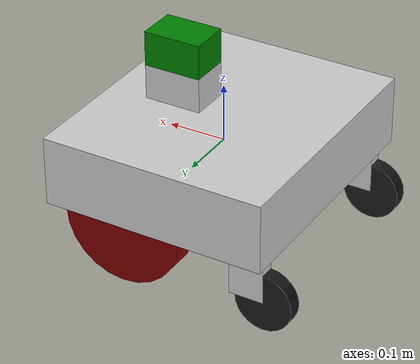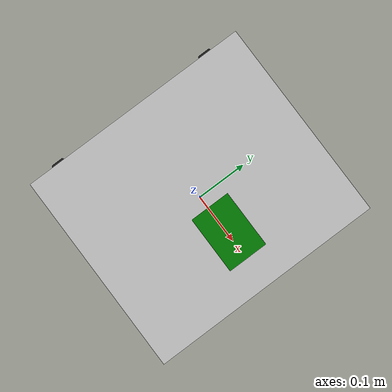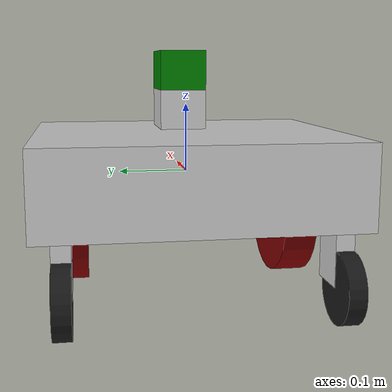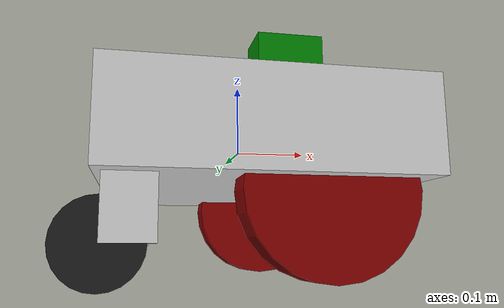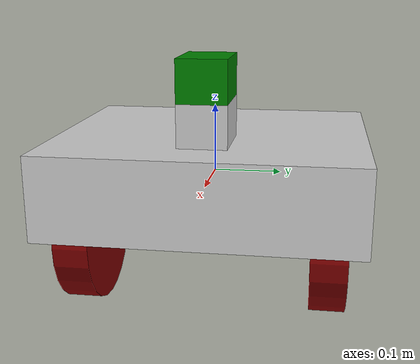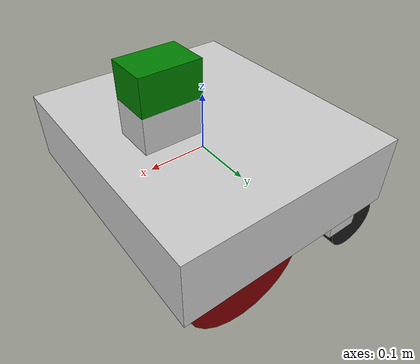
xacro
<?xml version="1.0" encoding="UTF-8"?>
<robot xmlns:xacro="http://ros.org/wiki/xacro"  name="robot-p">
  <link name="base_link">
    <inertial>
      <origin rpy="0 0 0" xyz="0.0 0.0 0.0"/>
      <mass value="0.56"/>
      <inertia ixx="0.004878" ixy="-6.2341e-07" ixz="-7.4538e-07" iyy="0.00090164" iyz="-0.00014394" izz="0.0042946"/>
    </inertial>
    <visual>
      <geometry>
        <box size="0.39 0.45 0.12"/>
      </geometry>
      <material name="grey">
        <color rgba="0.8 .8 .8 .9"/>
      </material>
    </visual>
  </link>
  <collision>
  	<geometry>
  		<box size="0.39 0.45 0.12"/>
  	</geometry>
  </collision>
  <xacro:include filename="$(find robot_p)/model/robot-p_rear_wheel.urdf.xacro" />
  <xacro:include filename="$(find robot_p)/model/robot-p.gazebo" />
  <xacro:include filename="$(find robot_p)/model/robot-p_front_wheel.urdf.xacro" />
  <xacro:include filename="$(find robot_p)/model/robot-p_laser_scanner.urdf.xacro" />
</robot>

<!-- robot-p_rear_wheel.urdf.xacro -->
<robot xmlns:xacro="http://ros.org/wiki/xacro">
  <link name="rear_left_swivel">
    <inertial>
      <origin rpy="0 0 0" xyz="0.0 0.0 0.0"/>
      <mass value="0.56"/>
      <inertia ixx="0.004878" ixy="-6.2341e-07" ixz="-7.4538e-07" iyy="0.00090164" iyz="-0.00014394" izz="0.0042946"/>
    </inertial>
    <visual>
      <origin xyz="0 0 0" rpy="0 0 0"/>
      <geometry>
        <box size="0.06 0.026 0.075"/>
      </geometry>
      <material name="gray">
        <color rgba="0.8 0.8 0.8 1"/>
      </material>
    </visual>
    <collision>
      <geometry>
        <box size="0.06 0.026 0.075"/>
      </geometry>
    </collision>
  </link>
  <joint name="base_rear_left_swivel_joint" type="continuous">
    <origin xyz="-0.155 0.185 -0.0975" rpy="0 0 0"/>
    <axis xyz="0 0 1" />
    <anchor xyz="0 1 0"/>
    <limit effort="100" velocity="100" k_velocity="0" />
    <joint_properties damping="0.0" friction="0.0" />
    <parent link="base_link"/>
    <child link="rear_left_swivel"/>
  </joint>
  <link name="rear_left_center_wheel">
    <inertial>
      <origin rpy="0 0 0" xyz="0.0 0.0 0.0"/>
      <mass value="0.56"/>
      <inertia ixx="0.004878" ixy="-6.2341e-07" ixz="-7.4538e-07" iyy="0.00090164" iyz="-0.00014394" izz="0.0042946"/>
    </inertial>
    <visual>
      <origin xyz="0 0 0" rpy="${-3.1415927/2.0} 0 0"/>
      <geometry>
        <cylinder length="0.025" radius="0.05"/>
      </geometry>
      <material name="black">
        <color rgba="0.1 0.1 0.1 1"/>
      </material>
    </visual>
    <collision>
      <origin xyz="0 0 0" rpy="${-3.1415927/2.0} 0 0"/>
      <geometry>
        <cylinder length="0.025" radius="0.05"/>
      </geometry>
    </collision>
  </link>
  <joint name="rear_left_swivel_wheel_joint" type="continuous">
    <origin xyz="-0.03 0 -0.0375" rpy="0 0 0"/>
    <axis xyz="0 1 0"/>
    <anchor xyz="0 0 0"/>
    <limit effort="100" velocity="100" k_velocity="0" />
    <joint_properties damping="0.0" friction="0.0" />
    <parent link="rear_left_swivel"/>
    <child link="rear_left_center_wheel"/>
  </joint>
  <link name="rear_right_swivel">
    <inertial>
      <origin rpy="0 0 0" xyz="0.0 0.0 0.0"/>
      <mass value="0.56"/>
      <inertia ixx="0.004878" ixy="-6.2341e-07" ixz="-7.4538e-07" iyy="0.00090164" iyz="-0.00014394" izz="0.0042946"/>
    </inertial>
    <visual>
      <origin xyz="0 0 0" rpy="0 0 0"/>
      <geometry>
        <box size="0.06 0.026 0.075"/>
      </geometry>
      <material name="gray">
        <color rgba="0.8 0.8 0.8 1"/>
      </material>
    </visual>
    <collision>
      <geometry>
        <box size="0.06 0.026 0.075"/>
      </geometry>
    </collision>
  </link>
  <joint name="base_rear_right_swivel_joint" type="continuous">
    <origin xyz="-0.155 -0.185 -0.0975" rpy="0 0 0"/>
    <axis xyz="0 0 1" />
    <anchor xyz="0 1 0"/>
    <limit effort="100" velocity="100" k_velocity="0" />
    <joint_properties damping="0.0" friction="0.0" />
    <parent link="base_link"/>
    <child link="rear_right_swivel"/>
  </joint>
  <link name="rear_right_center_wheel">
    <inertial>
      <origin rpy="0 0 0" xyz="0.0 0.0 0.0"/>
      <mass value="0.56"/>
      <inertia ixx="0.004878" ixy="-6.2341e-07" ixz="-7.4538e-07" iyy="0.00090164" iyz="-0.00014394" izz="0.0042946"/>
    </inertial>
    <visual>
      <origin xyz="0 0 0" rpy="${-3.1415927/2.0} 0 0"/>
      <geometry>
        <cylinder length="0.025" radius="0.05"/>
      </geometry>
      <material name="black">
        <color rgba="0.1 0.1 0.1 1"/>
      </material>
    </visual>
    <collision>
      <origin xyz="0 0 0" rpy="${-3.1415927/2.0} 0 0"/>
      <geometry>
        <cylinder length="0.025" radius="0.05"/>
      </geometry>
    </collision>
  </link>
  <joint name="rear_right_swivel_wheel_joint" type="continuous">
    <origin xyz="-0.03 0 -0.0375" rpy="0 0 0"/>
    <axis xyz="0 1 0"/>
    <anchor xyz="0 0 0"/>
    <limit effort="100" velocity="100" k_velocity="0" />
    <joint_properties damping="0.0" friction="0.0" />
    <parent link="rear_right_swivel"/>
    <child link="rear_right_center_wheel"/>
  </joint>
</robot>

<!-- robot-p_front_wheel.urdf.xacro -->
<robot xmlns:xacro="http://ros.org/wiki/xacro">
  <link name="front_left_wheel">
    <inertial>
      <origin rpy="0 0 0" xyz="0.0 0.0 0.0"/>
      <mass value="0.56"/>
      <inertia ixx="0.004878" ixy="-6.2341e-07" ixz="-7.4538e-07" iyy="0.00090164" iyz="-0.00014394" izz="0.0042946"/>
    </inertial>
    <visual>
      <geometry>
        <cylinder length="0.05" radius="0.105"/>
      </geometry>
      <material name="red">
        <color rgba="0.5 0.0 0.0 1"/>
      </material>
      <origin xyz="0 0 0" rpy="${-3.1415927/2.0} 0 0" />
    </visual>
    <collision>
      <origin xyz="0 0 0" rpy="${-3.1415927/2.0} 0 0" />
      <geometry>
        <cylinder length="0.05" radius="0.105"/>
      </geometry>
    </collision>
  </link>
  <joint name="base_to_front_left_wheel" type="fixed">
    <origin xyz="0.07 0.175 -0.075"/>
    <axis xyz="0 1 0" />
    <parent link="base_link"/>
    <child link="front_left_wheel"/>
  </joint>
  <link name="front_right_wheel">
    <inertial>
      <origin rpy="0 0 0" xyz="0.0 0.0 0.0"/>
      <mass value="0.56"/>
      <inertia ixx="0.004878" ixy="-6.2341e-07" ixz="-7.4538e-07" iyy="0.00090164" iyz="-0.00014394" izz="0.0042946"/>
    </inertial>
    <visual>
      <geometry>
        <cylinder length="0.05" radius="0.105"/>
      </geometry>
      <material name="red">
        <color rgba="0.5 0.0 0.0 1"/>
      </material>
      <origin xyz="0 0 0" rpy="${-3.1415927/2.0} 0 0" />
    </visual>
    <collision>
      <origin xyz="0 0 0" rpy="${-3.1415927/2.0} 0 0" />
      <geometry>
        <cylinder length="0.05" radius="0.105"/>
      </geometry>
    </collision>
  </link>
  <joint name="base_to_right_left_wheel" type="fixed">
    <axis xyz="0 -1 0" />
    <origin xyz="0.07 -0.175 -0.075"/>
    <parent link="base_link"/>
    <child link="front_right_wheel"/>
  </joint>
</robot>

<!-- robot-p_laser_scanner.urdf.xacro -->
<robot xmlns:xacro="http://ros.org/wiki/xacro">
  <link name="laser_scanner">
    <inertial>
      <origin rpy="0 0 0" xyz="0.0 0.0 0.0"/>
      <mass value="0.56"/>
      <inertia ixx="0.004878" ixy="-6.2341e-07" ixz="-7.4538e-07" iyy="0.00090164" iyz="-0.00014394" izz="0.0042946"/>
    </inertial>
    <visual>
      <geometry>
        <box size="0.1 .07 .06"/>
      </geometry>
      <material name="green">
        <color rgba="0 0.5 0 1"/>
      </material>
      <origin xyz="0 0 0"/>
    </visual>
    <collision>
      <geometry>
        <box size="0.1 .07 .06"/>
      </geometry>
    </collision>
  </link>
  <joint name="laser_pillar_to_laser_scanner" type="fixed">
    <origin xyz="0.0 0 0.06" rpy="0.0 0.0 3.1416"/>
    <parent link="laser_pillar"/>
    <child link="laser_scanner"/>
  </joint>
  <link name="laser_pillar">
    <inertial>
      <origin rpy="0 0 0" xyz="0.0 0.0 0.0"/>
      <mass value="0.56"/>
      <inertia ixx="0.004878" ixy="-6.2341e-07" ixz="-7.4538e-07" iyy="0.00090164" iyz="-0.00014394" izz="0.0042946"/>
    </inertial>
    <visual>
      <geometry>
        <box size="0.1 .07 .06"/>
      </geometry>
      <material name="grey">
        <color rgba="0.8 .8 .8 .9"/>
      </material>
      <origin xyz="0 0 0"/>
    </visual>
    <collision>
      <geometry>
        <box size="0.1 .07 .06"/>
      </geometry>
    </collision>
  </link>
  <joint name="base_to_laser_pillar" type="fixed">
    <origin xyz="0.075 0 0.09"/>
    <parent link="base_link"/>
    <child link="laser_pillar"/>
  </joint>
</robot>
